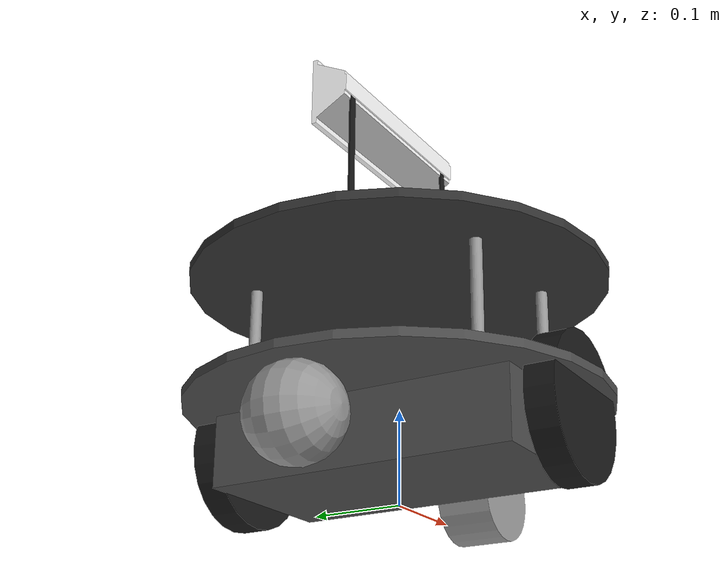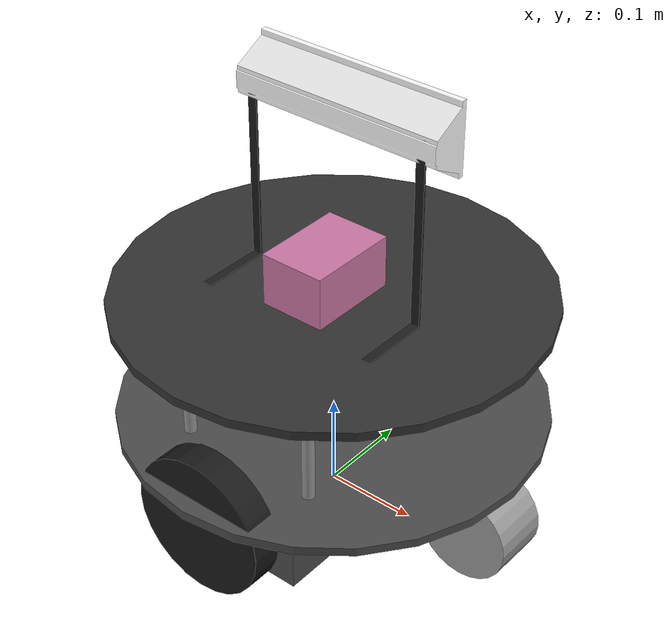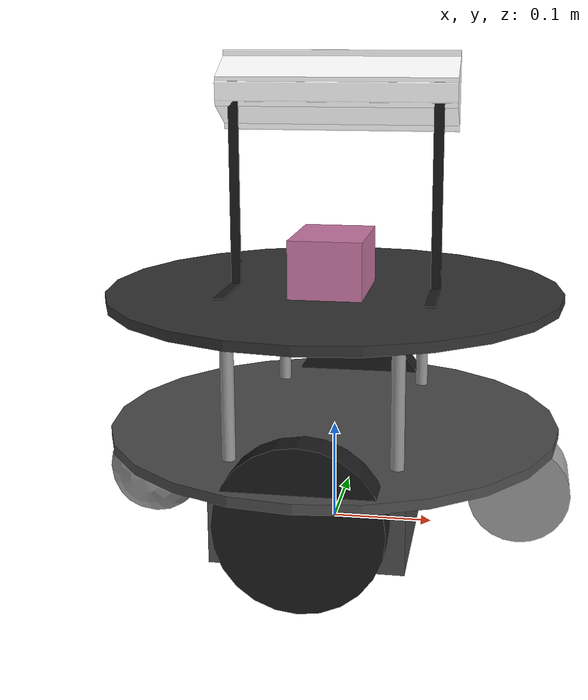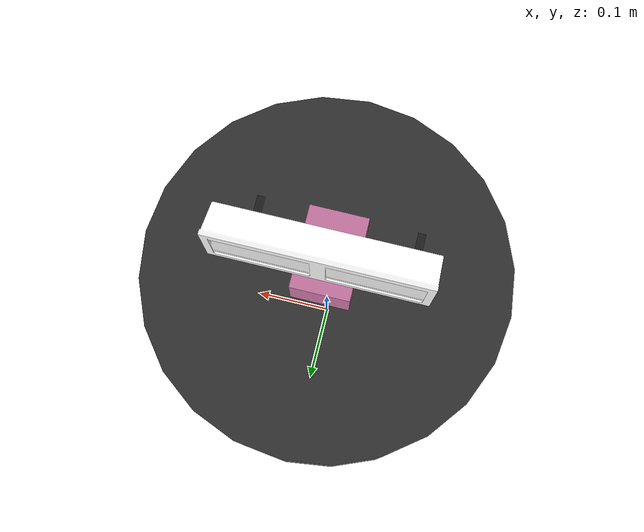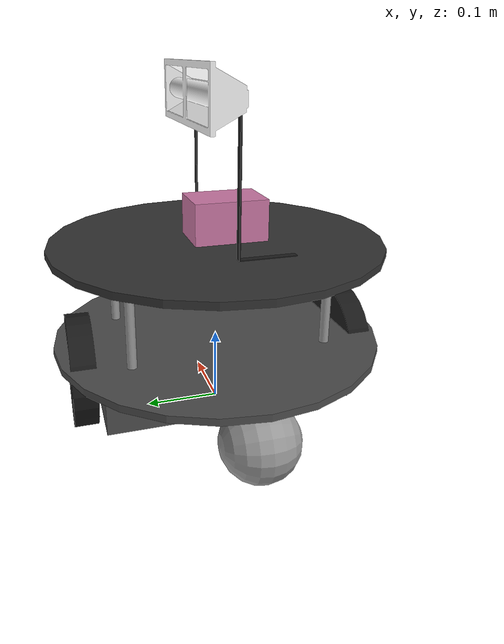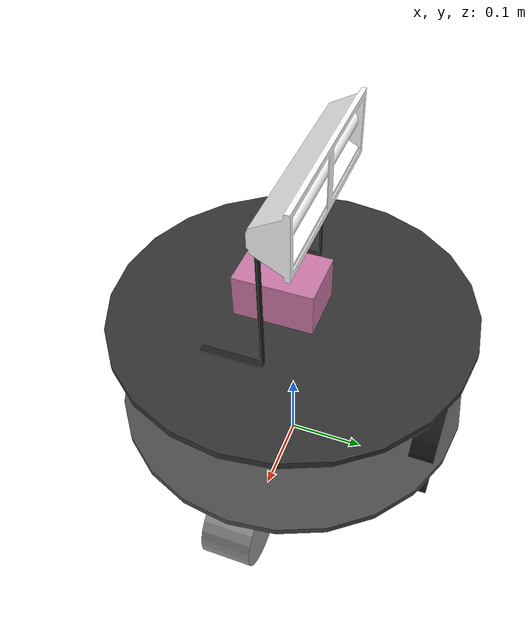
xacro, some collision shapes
<?xml version="1.0"?>
<robot name="disinfectbot" xmlns:xacro="http://ros.org/wiki/xacro">
  <xacro:include filename="$(find disinfectbot_description)/urdf/common.urdf.xacro"/>
  <xacro:include filename="$(find disinfectbot_description)/urdf/base/base.urdf.xacro"/>
  <xacro:include filename="$(find disinfectbot_description)/urdf/base/layer1.urdf.xacro"/>
  <xacro:include filename="$(find disinfectbot_description)/urdf/devices/rplidar.urdf.xacro" />
  <xacro:include filename="$(find disinfectbot_description)/urdf/devices/uv_lamp.urdf.xacro" />
  <xacro:include filename="$(find disinfectbot_description)/urdf/utils/l_bracket.urdf.xacro" />
  <xacro:include filename="$(find disinfectbot_description)/urdf/control/ros2_control.urdf.xacro" />
  <xacro:arg name="use_sim" default="false"/>

  <xacro:base/>
  <xacro:layer1 parent="base_link"/>

  <xacro:rplidar name="rplidar" parent_link="plate_0_link">
    <origin xyz="0 0 0.05"
            rpy="0 0 ${pi}"/>
  </xacro:rplidar>

  <xacro:l_bracket name="left_lamp_holder" parent_link="plate_0_link">
      <origin xyz="0.1 0.0 0.00475" rpy="0 0 ${-pi/2}"/>
  </xacro:l_bracket>

  <xacro:l_bracket name="right_lamp_holder" parent_link="plate_0_link">
      <origin xyz="-0.1 0.0 0.00475" rpy="0 0 ${-pi/2}"/>
  </xacro:l_bracket>

  <xacro:uv_lamp name="uv_lamp" parent_link="left_lamp_holder_link">
      <origin xyz="-0.039 -0.1 0.19" rpy="0 0 ${pi}"/>
  </xacro:uv_lamp>

</robot>

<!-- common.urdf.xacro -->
<!-- Various useful macros -->
<robot xmlns:xacro="http://ros.org/wiki/xacro">

  <!-- Constants -->
  <xacro:property name="M_PI" value="3.1415926535897931" />

  <xacro:macro name="inertial_cuboid_with_pose" params="mass x y z *origin">
    <inertial>
      <mass value="${mass}" />
      <xacro:insert_block name="origin"/>
      <inertia ixx="${(1/12) * mass * (y*y + z*z)}" ixy="0.0" ixz="0.0"
        iyy="${(1/12) * mass * (x*x + z*z)}" iyz="0.0"
        izz="${(1/12) * mass * (x*x + y*y)}" />
    </inertial>
  </xacro:macro>

  <xacro:macro name="inertial_cuboid" params="mass x y z">
    <xacro:inertial_cuboid_with_pose mass="${mass}" x="${x}" y="${y}" z="${z}">
      <origin xyz="0 0 0" />
    </xacro:inertial_cuboid_with_pose>
  </xacro:macro>

  <xacro:macro name="inertial_cylinder_with_pose" params="mass radius length *origin">
    <inertial>
      <xacro:insert_block name="origin"/>
      <mass value="${mass}" />
      <inertia ixx="${(1/12) * mass * (3*radius*radius + length*length)}" ixy="0.0" ixz="0.0"
        iyy="${(1/12) * mass * (3*radius*radius + length*length)}" iyz="0.0"
        izz="${(1/2) * mass * (radius*radius)}" />
    </inertial>
  </xacro:macro>

  <xacro:macro name="inertial_cylinder" params="mass radius length">
    <xacro:inertial_cylinder_with_pose mass="${mass}" radius="${radius}" length="${length}">
      <origin xyz="0 0 0" />
    </xacro:inertial_cylinder_with_pose>
  </xacro:macro>

  <xacro:macro name="inertial_sphere" params="mass radius">
    <inertial>
      <mass value="${mass}" />
      <inertia ixx="${(2/5) * mass * radius * radius}" ixy="0.0" ixz="0.0"
	             iyy="${(2/5) * mass * radius * radius}" iyz="0.0"
	             izz="${(2/5) * mass * radius * radius}" />
    </inertial>
  </xacro:macro>

  <xacro:macro name="inertial_dummy">
    <xacro:inertial_cuboid mass="0.001" x="0.001" y="0.001" z="0.001"/>
  </xacro:macro>

  <!-- Conversion macros -->
  <xacro:property name="cm2m"    value="${1/100.0}"/>
  <xacro:property name="mm2m"    value="${1/1000.0}"/>
  <xacro:property name="in2m"    value="0.0254"/>
  <xacro:property name="deg2rad" value="${pi/180.0}"/>

  <!-- Material colors -->
  <material name="material_black">
    <color rgba="0.1 0.1 0.1 1"/>
  </material>

  <material name="material_darkgray">
    <color rgba="0.3 0.3 0.3 1"/>
  </material>

  <material name="sensor_blue">
    <color rgba="0.1 0.2 0.8 1"/>
  </material>

  <material name="material_lightgray">
    <color rgba="0.5 0.5 0.5 1"/>
  </material>

</robot>

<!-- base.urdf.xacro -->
<robot name="eddiebot_base" xmlns:xacro="http://ros.org/wiki/xacro">

  <!-- Define robot constants -->
  <xacro:property name="base_length" value="0.0095"/>
  <xacro:property name="base_radius" value="0.2245"/>
  <xacro:property name="base_mass" value="2"/>
  <xacro:property name="base_link_z_offset" value="0.10125"/>

  <xacro:property name="battery_box_z_offset" value="-0.04285"/>
  <xacro:property name="battery_box_width" value="0.3366"/>

  <xacro:property name="caster_mass" value="0.5"/>
  <xacro:property name="caster_radius" value="0.05"/>
  <xacro:property name="caster_length" value="0.061"/>
  <xacro:property name="caster_x_offset" value="0.18745"/>
  <xacro:property name="caster_z_offset" value="-0.00475"/>

  <xacro:property name="axle_radius" value="0.00635"/>
  <xacro:property name="axle_length" value="0.00635"/>
  <xacro:property name="axle_y_offset" value="0.171475"/>
  <xacro:property name="axle_z_offset" value="0.014"/>

  <xacro:property name="wheel_mass" value="0.8"/>
  <xacro:property name="wheel_radius" value="0.0762"/>
  <xacro:property name="wheel_width" value="0.03175"/>
  <xacro:property name="wheel_y_offset" value="0.01905"/>

  <xacro:macro name="base">

    <!-- base_footprint is a fictitious link(frame) that is on the ground right below base_link origin, navigation stack depends on this frame -->
    <link name="base_footprint">
    </link>
    <joint name="base_footprint_joint" type="fixed">
      <origin xyz="0 0 ${base_link_z_offset}" rpy="0 0 0" />
      <parent link="base_footprint"/>
      <child link="base_link" />
    </joint>

    <link name="base_link">
      <xacro:inertial_cylinder mass="${base_mass}" length="${base_length}" radius="${base_radius}"/>
      <visual>
        <origin xyz="0 0 0" rpy="0 0 0" />
        <geometry>
          <cylinder length="${base_length}" radius="${base_radius}"/>
        </geometry>
        <material name ="material_darkgray" />
      </visual>
      <collision>
        <origin xyz="0 0 0" rpy="0 0 0" />
        <geometry>
          <cylinder length="${base_length}" radius="${base_radius}"/>
        </geometry>
      </collision>
    </link>

    <link name="battery_box">
      <xacro:inertial_cuboid mass="1" x="0.1778" y="${battery_box_width}" z="0.0762"/>
      <visual>
        <origin xyz="0 0 0" rpy="0 0 0" />
        <geometry>
          <box size="0.1778 ${battery_box_width} 0.0762" />
        </geometry>
        <material name ="material_darkgray" />
      </visual>
      <collision>
        <origin xyz="0 0 0" rpy="0 0 0" />
        <geometry>
          <box size="0.1778 ${battery_box_width} 0.0762" />
        </geometry>
      </collision>
    </link>

    <joint name="battery_box_joint" type="fixed">
      <origin xyz="0 0 ${battery_box_z_offset}" rpy="0 0 0" />
      <parent link="base_link" />
      <child link="battery_box" />
    </joint>

    <link name="front_caster">
      <xacro:inertial_cylinder mass="${caster_mass}" length="${caster_length}" radius="${caster_radius}" />
      <visual>
        <origin xyz="0 0 0" rpy="-${M_PI/2} 0 ${M_PI/2}" />
        <geometry>
          <mesh filename="package://disinfectbot_description/meshes/28971-Caster-Wheel-Kit-v1.0.stl"/>
        </geometry>
        <material name ="material_lightgray">
          <color rgba="0.6 0.6 0.6 1"/>
        </material>
      </visual>
      <collision>
        <geometry>
          <cylinder length="${caster_length}" radius="${caster_radius}"/>
        </geometry>
        <origin rpy="${M_PI/2} 0 0" xyz="0 0 -${caster_radius}"/>
      </collision>
    </link>
    <gazebo reference="front_caster">
      <mu1 value="0.0"/>
      <mu2 value="0.0"/>
      <kp value="10000000.0"/>
      <kd value="1.0"/>
      <fdir1 value="1 0 0"/>
      <turnGravityOff>false</turnGravityOff>
    </gazebo>

    <joint name="front_caster_joint" type="fixed">
      <origin xyz="${caster_x_offset} 0 ${caster_z_offset}" rpy="0 0 0" />
      <parent link="base_link" />
      <child link="front_caster" />
    </joint>

    <link name="rear_caster">
      <xacro:inertial_cylinder mass="${caster_mass}" length="${caster_length}" radius="${caster_radius}" />
      <visual>
        <origin xyz="0 0 0" rpy="-${M_PI/2} 0 ${M_PI/2}" />
        <geometry>
          <mesh filename="package://disinfectbot_description/meshes/28971-Caster-Wheel-Kit-v1.0.stl"/>
        </geometry>
        <material name ="material_lightgray">
          <color rgba="0.6 0.6 0.6 1"/>
        </material>
      </visual>
      <collision>
        <geometry>
          <sphere radius="${caster_radius}"/>
        </geometry>
        <origin rpy="${M_PI/2} 0 0" xyz="0 0 -${caster_radius}"/>
      </collision>
    </link>
    <gazebo reference="rear_caster">
      <mu1 value="0.0"/>
      <mu2 value="0.0"/>
      <kp value="10000000.0"/>
      <kd value="1.0"/>
      <fdir1 value="1 0 0"/>
      <turnGravityOff>false</turnGravityOff>
    </gazebo>

    <joint name="rear_caster_joint" type="fixed">
      <origin xyz="${-caster_x_offset} 0 ${caster_z_offset}" rpy="0 0 0" />
      <parent link="base_link" />
      <child link="rear_caster" />
    </joint>

    <link name="left_axle_link">
      <xacro:inertial_dummy />
      <visual>
        <origin xyz="0 0 0" rpy="0 ${M_PI/2} ${M_PI/2}" />
        <geometry>
          <cylinder radius="${axle_radius}" length = "${axle_length}"/>
        </geometry>
        <material name ="material_lightgray" />
      </visual>
      <collision>
        <origin xyz="0 0 0" rpy="0 ${M_PI/2} ${M_PI/2}" />
        <geometry>
          <cylinder radius="${axle_radius}" length = "${axle_length}"/>
        </geometry>
      </collision>
    </link>

    <joint name="left_axle_joint" type="fixed">
      <origin xyz="0 ${axle_y_offset} ${axle_z_offset}" rpy="0 0 0"/>
      <parent link="battery_box"/>
      <child link="left_axle_link"/>
      <axis xyz="0 1 0"/>
    </joint>

    <link name="right_axle_link">
      <xacro:inertial_dummy />
      <visual>
        <origin xyz="0 0 0" rpy="0 ${M_PI/2} ${M_PI/2}" />
        <geometry>
          <cylinder radius="${axle_radius}" length = "${axle_length}"/>
        </geometry>
        <material name ="material_lightgray" />
      </visual>
      <collision>
        <origin xyz="0 0 0" rpy="0 ${M_PI/2} ${M_PI/2}" />
        <geometry>
          <cylinder radius="${axle_radius}" length = "${axle_length}"/>
        </geometry>
      </collision>
    </link>

    <joint name="right_axle_joint" type="fixed">
      <origin xyz="0 ${-axle_y_offset} ${axle_z_offset}" rpy="0 0 0"/>
      <parent link="battery_box"/>
      <child link="right_axle_link"/>
      <axis xyz="0 1 0"/>
    </joint>

    <link name="left_wheel_link">
      <xacro:inertial_cylinder mass="${wheel_mass}" radius="${wheel_radius}" length="${wheel_width}" />
      <visual>
        <origin xyz="0 0 0" rpy="${M_PI/2} 0 0" />
        <geometry>
          <cylinder radius="${wheel_radius}" length = "${wheel_width}"/>
        </geometry>
        <material name ="material_black" />
      </visual>
      <collision>
        <origin xyz="0 0 0" rpy="${M_PI/2} 0 0" />
        <geometry>
          <cylinder radius="${wheel_radius}" length = "${wheel_width}"/>
        </geometry>
      </collision>
    </link>

    <joint name="left_wheel_joint" type="continuous">
      <origin xyz="0 ${wheel_y_offset} 0" rpy="0 0 0"/>
      <parent link="left_axle_link"/>
      <child link="left_wheel_link"/>
      <axis xyz="0 1 0"/>
    </joint>

    <link name="right_wheel_link">
      <xacro:inertial_cylinder mass="${wheel_mass}" radius="${wheel_radius}" length="${wheel_width}" />
      <visual>
        <origin xyz="0 0 0" rpy="${M_PI/2} 0 0" />
        <geometry>
          <cylinder radius="${wheel_radius}" length = "${wheel_width}"/>
        </geometry>
        <material name ="material_black" />
      </visual>
      <collision>
        <origin xyz="0 0 0" rpy="${M_PI/2} 0 0" />
        <geometry>
          <cylinder radius="${wheel_radius}" length = "${wheel_width}"/>
        </geometry>
      </collision>
    </link>

    <joint name="right_wheel_joint" type="continuous">
      <origin xyz="0 -${wheel_y_offset} 0" rpy="0 0 0"/>
      <parent link="right_axle_link"/>
      <child link="right_wheel_link"/>
      <axis xyz="0 1 0"/>
    </joint>

  </xacro:macro>

</robot>

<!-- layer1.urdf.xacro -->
<robot name="eddiebot_hardware" xmlns:xacro="http://ros.org/wiki/xacro">

  <!-- Macro for creating eddiebot circle stack. -->
  <xacro:macro name="eddiebot_standoff_5in" params="parent number x_loc y_loc z_loc">
    <joint name="standoff_5in_${number}_joint" type="fixed">
      <origin xyz="${x_loc} ${y_loc} ${z_loc}" rpy="0 0 0" />
      <parent link="${parent}"/>
      <child link="standoff_5in_${number}_link" />
    </joint>

    <link name="standoff_5in_${number}_link">
      <inertial>
        <mass value="0.001" />
        <origin xyz="0 0 0" />
        <inertia ixx="0.0001" ixy="0.0" ixz="0.0"
          iyy="0.0001" iyz="0.0"
          izz="0.0001" />
      </inertial>

      <visual>
        <origin xyz=" 0 0 0 " rpy="0 0 0" />
        <geometry>
          <cylinder length="0.127" radius="0.00635"/>
        </geometry>
        <material name ="light_grey">
          <color rgba="0.6 0.6 0.6 1"/>
        </material>
      </visual>

      <collision>
        <origin xyz="0.0 0.0 0.0" rpy="0 0 0" />
        <geometry>
          <cylinder length="0.127" radius="0.00635"/>
        </geometry>
      </collision>
    </link>
  </xacro:macro>

  <xacro:macro name="layer1" params="parent">
    <joint name="plate_0_joint" type="fixed">
      <origin xyz="0 0 0.1365" rpy="0 0 0" />
      <parent link="${parent}"/>
      <child link="plate_0_link" />
    </joint>

    <link name="plate_0_link">
      <inertial>
        <mass value="0.01" />
        <origin xyz="0 0 0" />
        <inertia ixx="0.01" ixy="0.0" ixz="0.0"
          iyy="0.01" iyz="0.0"
          izz="0.01" />
      </inertial>

      <visual>
        <origin xyz=" 0 0 0 " rpy="0 0 0" />
        <geometry>
          <cylinder length="0.0095" radius="0.2245"/>
        </geometry>
        <material name ="veryDarkGrey">
          <color rgba=".2 .2 .2 1"/>
        </material>
      </visual>

      <collision>
        <origin xyz="0.0 0.0 0.0" rpy="0 0 0" />
        <geometry>
          <cylinder length="0.0095" radius="0.2245"/>
        </geometry>
      </collision>
    </link>

    <xacro:eddiebot_standoff_5in parent="${parent}" number="0" x_loc="0.0776402" y_loc="0.1314196" z_loc="0.06825"/>
    <xacro:eddiebot_standoff_5in parent="${parent}" number="1" x_loc="0.0776402" y_loc="-0.1314196" z_loc="0.06825"/>
    <xacro:eddiebot_standoff_5in parent="${parent}" number="2" x_loc="-0.0776402" y_loc="-0.1314196" z_loc="0.06825"/>
    <xacro:eddiebot_standoff_5in parent="${parent}" number="3" x_loc="-0.0776402" y_loc="0.1314196" z_loc="0.06825"/>
  </xacro:macro>

</robot>

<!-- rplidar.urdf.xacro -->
<robot xmlns:xacro="http://ros.org/wiki/xacro">

<xacro:macro name="rplidar" params="name parent_link *origin">
  <xacro:property name="cm2m"    value="${1/100.0}"/>

  <xacro:property name="mass"       value="0.17"/>
  <xacro:property name="length_x"   value="${7.1*cm2m}" />
  <xacro:property name="length_y"   value="${10*cm2m}" />
  <xacro:property name="length_z"   value="${6*cm2m}" />

  <xacro:property name="collision_x_offset"       value="${0*cm2m}" />
  <xacro:property name="collision_y_offset"       value="${1.3*cm2m}" />
  <xacro:property name="collision_z_offset"       value="${-1.9*cm2m}" />

  <joint name="${name}_joint" type="fixed">
    <parent link="${parent_link}"/>
    <child link="${name}_link"/>
    <xacro:insert_block name="origin"/>
  </joint>

  <link name="${name}_link">
    <visual>
      <geometry>
        <mesh filename="package://disinfectbot_description/meshes/sensors/rplidar.dae" scale="1 1 1" />
      </geometry>
    </visual>
    <collision>
      <origin xyz="${collision_x_offset} ${collision_y_offset} ${collision_z_offset}"/>
      <geometry>
        <box size="${length_x} ${length_y} ${length_z}"/>
      </geometry>
    </collision>
    <xacro:inertial_cuboid mass="0.17" x="${length_x}" y="${length_y}" z="${length_z}"/>
  </link>

  <gazebo>
      <plugin filename="gz-sim-sensors-system" name="gz::sim::systems::Sensors">
          <render_engine>ogre2</render_engine>
      </plugin>
  </gazebo>
  <gazebo reference="${name}_link">
    <sensor name="${name}" type="gpu_lidar">
      <pose relative_to='${name}_link'>0 0 0 0 0 0</pose>
      <topic>scan</topic>
      <update_rate>62</update_rate>
      <visualize>1</visualize>
      <always_on>true</always_on>
      <ray>
        <scan>
          <horizontal>
            <samples>640</samples>
            <resolution>1.0</resolution>
            <min_angle>${-pi}</min_angle>
            <max_angle>${pi}</max_angle>
          </horizontal>
          <vertical>
            <samples>1</samples>
            <resolution>1</resolution>
            <min_angle>0</min_angle>
            <max_angle>0</max_angle>
          </vertical>
        </scan>
        <range>
          <min>0.164</min>
          <max>12.0</max>
          <resolution>0.01</resolution>
        </range>
      </ray>
      <gz_frame_id>${name}_link</gz_frame_id>
    </sensor>
    <visual>
      <material>
        <diffuse>${3/255} ${3/255} ${3/255} 1</diffuse>
        <specular>0 0 0 1</specular>
        <emissive>0 0 0 1</emissive>
      </material>
    </visual>
  </gazebo>

  <gazebo reference="${name}_joint">
    <preserveFixedJoint>true</preserveFixedJoint>
  </gazebo>

</xacro:macro>
</robot>

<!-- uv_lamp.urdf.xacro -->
<robot xmlns:xacro="http://ros.org/wiki/xacro">

  <xacro:macro name="uv_lamp" params="name parent_link *origin">
    <link name="${name}_link">

      <visual>
        <origin xyz="0 0 0" rpy="0 0 0"/>
        <geometry>
          <mesh filename="package://disinfectbot_description/meshes/Lamp2.stl" scale="0.001 0.001 0.001"/>
        </geometry>
        <material name="white">
          <color rgba="1 1 1 1"/>
        </material>
      </visual>

      <collision>
        <origin xyz="0 0 0" rpy="0 0 0"/>
        <geometry>
          <mesh filename="package://disinfectbot_description/meshes/Lamp2.stl" scale="0.001 0.001 0.001"/>
        </geometry>
      </collision>

      <inertial>
        <mass value="1.0"/>
        <origin xyz="-0.020181 -0.000000002 0.000000001"/>
        <inertia ixx="0.005460" ixy="0.000000000193" ixz="-0.000000000018"
                iyy="0.000523" iyz="0.000000000069"
                izz="0.005257"/>
      </inertial>
    </link>

    <joint name="${name}_joint" type="fixed">
      <parent link="${parent_link}"/>
      <child link="${name}_link"/>
      <xacro:insert_block name="origin"/>
    </joint>

    <gazebo reference="${name}_link">
      <material>Gazebo/White</material>
    </gazebo>
  </xacro:macro>

</robot>

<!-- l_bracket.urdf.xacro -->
<robot xmlns:xacro="http://ros.org/wiki/xacro">

<xacro:macro name="l_bracket" params="name parent_link *origin">
  <xacro:property name="bracket_mass" value="0.5"/>

  <link name="${name}_link">
    <!-- Visuals -->
    <visual>
      <origin xyz="0.0 0.0 0.1" rpy="0 0 ${pi/2}"/>
      <geometry>
        <box size="0.01 0.002 0.2"/>
      </geometry>
      <material name="black">
        <color rgba="0.1 0.1 0.1 1"/>
      </material>
    </visual>

    <visual>
      <origin xyz="0.0375 0.0 0.0" rpy="0 0 0"/>
      <geometry>
        <box size="0.075 0.01 0.002"/>
      </geometry>
    </visual>

    <!-- Collisions -->
    <collision>
      <origin xyz="0.0 0.0 0.05" rpy="0 0 0"/>
      <geometry>
        <box size="0.002 0.02 0.1"/>
      </geometry>
    </collision>
    <collision>
      <origin xyz="0.0375 0.0 0.0" rpy="0 0 0"/>
      <geometry>
        <box size="0.075 0.02 0.002"/>
      </geometry>
    </collision>

    <!-- Inertial: treat entire bracket as one cuboid -->
    <xacro:inertial_cuboid_with_pose mass="${bracket_mass}" x="0.075" y="0.02" z="0.1">
      <origin xyz="0.0375 0 0.05" rpy="0 0 0"/>
    </xacro:inertial_cuboid_with_pose>
  </link>

  <joint name="${name}_joint" type="fixed">
    <parent link="${parent_link}"/>
    <child link="${name}_link"/>
    <xacro:insert_block name="origin"/>
  </joint>

  <gazebo reference="${name}_link">
    <material>Gazebo/Black</material>
  </gazebo>
</xacro:macro>
</robot>
